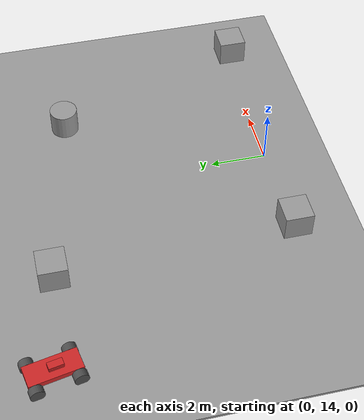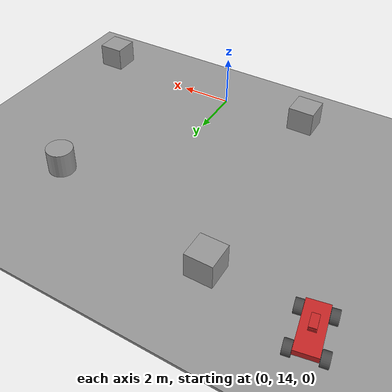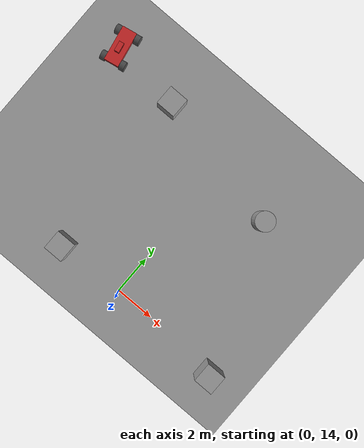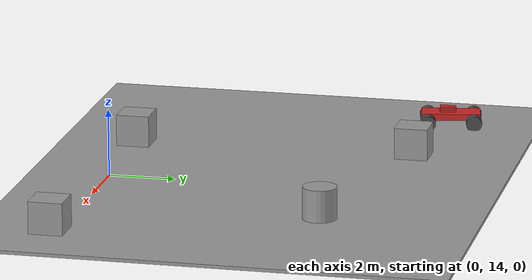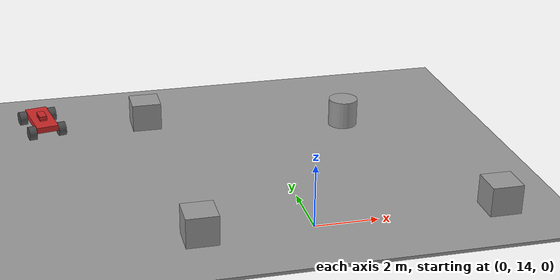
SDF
<sdf version="1.6">
 <world name="default">
  <light name="sun" type="directional">
   <pose>0 0 10 0 -0 0</pose>
   <diffuse>0.8 0.8 0.8 1</diffuse>
   <specular>0.2 0.2 0.2 1</specular>
   <attenuation>
    <range>1000</range>
    <constant>0.9</constant>
    <linear>0.01</linear>
    <quadratic>0.001</quadratic>
   </attenuation>
   <direction>-0.5 0.1 -0.9</direction>
  </light>
  <model name="ground_plane">
   <static>1</static>
   <link name="link">
    <collision name="collision">
     <geometry><plane><normal>0 0 1</normal><size>100 100</size></plane></geometry>
     <surface><friction><ode><mu>100</mu><mu2>50</mu2></ode></friction></surface>
    </collision>
    <visual name="visual">
     <cast_shadows>0</cast_shadows>
     <geometry><plane><normal>0 0 1</normal><size>100 100</size></plane></geometry>
     <material>
      <script><uri>file://media/materials/scripts/gazebo.material</uri><name>Gazebo/Grey</name></script>
     </material>
    </visual>
   </link>
  </model>
  <gravity>0 0 -9.8</gravity>
  <magnetic_field>6e-06 2.3e-05 -4.2e-05</magnetic_field>
  <atmosphere type="adiabatic"/>
  <physics name="default_physics" default="0" type="ode">
   <max_step_size>0.001</max_step_size>
   <real_time_factor>1</real_time_factor>
   <real_time_update_rate>1000</real_time_update_rate>
  </physics>
  <scene><ambient>0.4 0.4 0.4 1</ambient><background>0.7 0.7 0.7 1</background><shadows>1</shadows></scene>
  <spherical_coordinates>
   <surface_model>EARTH_WGS84</surface_model>
   <latitude_deg>0</latitude_deg>
   <longitude_deg>0</longitude_deg>
   <elevation>0</elevation>
   <heading_deg>0</heading_deg>
  </spherical_coordinates>
  <model name="newbot">
   <link name="base_link">
    <inertial>
     <pose>0.042217 0.001897 0.337167 0 -0 0</pose>
     <mass>16.523</mass>
     <inertia>
      <ixx>0.313604</ixx>
      <ixy>-0.00079999</ixy>
      <ixz>0.0164007</ixz>
      <iyy>0.392204</iyy>
      <iyz>-0.00090002</iyz>
      <izz>0.448502</izz>
     </inertia>
    </inertial>
    <collision name="base_link_fixed_joint_lump__camera_link_collision">
     <pose>-0.091106 0.005636 0.53357 0 -0 0</pose>
     <geometry><box><size>0.5 0.25 0.1</size></box></geometry>
    </collision>
    <collision name="base_link_fixed_joint_lump__laser_link_collision_1">
     <pose>-0.091106 0.005636 0.66357 0 -0 0</pose>
     <geometry><box><size>0.5 0.25 0.047</size></box></geometry>
    </collision>
    <collision name="base_link_fixed_joint_lump__chassis_link_collision_2">
     <pose>0 0 0.375 0 -0 0</pose>
     <geometry><box><size>1.8 0.755 0.2</size></box></geometry>
    </collision>
    <visual name="base_link_fixed_joint_lump__camera_link_visual">
     <pose>-0.091106 0.005636 0.49357 0 -0 0</pose>
     <geometry><box><size>0.5 0.25 0.1</size></box></geometry>
     <material>
      <script><name>Gazebo/Red</name><uri>file://media/materials/scripts/gazebo.material</uri></script>
     </material>
    </visual>
    <visual name="base_link_fixed_joint_lump__laser_link_visual_1">
     <pose>-0.091106 0.005636 0.61357 0 -0 0</pose>
     <geometry><box><size>0.5 0.25 0.047</size></box></geometry>
     <material>
      <script><name>Gazebo/Red</name><uri>file://media/materials/scripts/gazebo.material</uri></script>
     </material>
    </visual>
    <visual name="base_link_fixed_joint_lump__chassis_link_visual_2">
     <pose>0 0 0.375 0 -0 0</pose>
     <geometry><box><size>1.8 0.755 0.2</size></box></geometry>
     <material>
      <script><name>Gazebo/Red</name><uri>file://media/materials/scripts/gazebo.material</uri></script>
     </material>
    </visual>
    <sensor name="camera" type="camera">
     <update_rate>30</update_rate>
     <camera name="head">
      <horizontal_fov>1.39626</horizontal_fov>
      <image><width>800</width><height>800</height><format>R8G8B8</format></image>
      <clip><near>0.02</near><far>300</far></clip>
      <noise><mean>0</mean><stddev>0.007</stddev><type>gaussian</type></noise>
     </camera>
     <plugin name="camera_controller" filename="libgazebo_ros_camera.so">
      <alwaysOn>true</alwaysOn>
      <updateRate>0.0</updateRate>
      <cameraName>camera</cameraName>
      <imageTopicName>image_raw</imageTopicName>
      <cameraInfoTopicName>camera_info</cameraInfoTopicName>
      <frameName>camera_link</frameName>
      <hackBaseline>0.07</hackBaseline>
      <distortionK1>0.0</distortionK1>
      <distortionK2>0.0</distortionK2>
      <distortionK3>0.0</distortionK3>
      <distortionT1>0.0</distortionT1>
      <distortionT2>0.0</distortionT2>
      <robotNamespace>/</robotNamespace>
     </plugin>
     <pose>-0.091106 0.005636 0.49357 0 -0 0</pose>
    </sensor>
    <sensor name="head_hokuyo_sensor" type="ray">
     <visualize>1</visualize>
     <update_rate>40</update_rate>
     <ray>
      <scan>
       <horizontal>
        <samples>720</samples>
        <resolution>1</resolution>
        <min_angle>-3.14159</min_angle>
        <max_angle>3.14159</max_angle>
       </horizontal>
       <vertical><samples>1</samples><min_angle>0</min_angle><max_angle>0</max_angle></vertical>
      </scan>
      <range><min>0.1</min><max>30</max><resolution>0.01</resolution></range>
      <noise><type>gaussian</type><mean>0</mean><stddev>0.01</stddev></noise>
     </ray>
     <plugin name="gazebo_ros_head_hokuyo_controller" filename="libgazebo_ros_laser.so">
      <topicName>base_scan</topicName>
      <frameName>laser_link</frameName>
      <robotNamespace>/</robotNamespace>
     </plugin>
     <pose>-0.091106 0.005636 0.61357 0 -0 0</pose>
    </sensor>
   </link>
   <link name="front_left_wheel_link">
    <pose>0.70465 0.51502 0.23923 0 -0 0</pose>
    <inertial>
     <pose>9e-06 1e-06 -4e-06 0 -0 0</pose>
     <mass>0.477</mass>
     <inertia><ixx>0.0013</ixx><ixy>0</ixy><ixz>0</ixz><iyy>0.0024</iyy><iyz>0</iyz><izz>0.0013</izz></inertia>
    </inertial>
    <collision name="front_left_wheel_link_collision">
     <pose>0 0 0 1.5708 -0 0</pose>
     <geometry><cylinder><length>0.26</length><radius>0.24</radius></cylinder></geometry>
     <surface><friction><ode><mu>0.2</mu><mu2>0.2</mu2></ode></friction></surface>
    </collision>
    <visual name="front_left_wheel_link_visual">
     <pose>0 0 0 1.5708 -0 0</pose>
     <geometry><cylinder><length>0.26</length><radius>0.24</radius></cylinder></geometry>
     <material>
      <script><name>Gazebo/DarkGrey</name><uri>file://media/materials/scripts/gazebo.material</uri></script>
     </material>
    </visual>
   </link>
   <joint name="front_left_wheel" type="revolute">
    <child>front_left_wheel_link</child>
    <parent>base_link</parent>
    <axis>
     <xyz>0 1 0</xyz>
     <limit><lower>-1e+16</lower><upper>1e+16</upper></limit>
     <dynamics><spring_reference>0</spring_reference><spring_stiffness>0</spring_stiffness></dynamics>
     <use_parent_model_frame>1</use_parent_model_frame>
    </axis>
   </joint>
   <link name="front_right_wheel_link">
    <pose>0.70465 -0.51501 0.23923 0 -0 0</pose>
    <inertial>
     <pose>9e-06 1e-06 -4e-06 0 -0 0</pose>
     <mass>0.477</mass>
     <inertia><ixx>0.0013</ixx><ixy>0</ixy><ixz>0</ixz><iyy>0.0024</iyy><iyz>0</iyz><izz>0.0013</izz></inertia>
    </inertial>
    <collision name="front_right_wheel_link_collision">
     <pose>0 0 0 1.5708 -0 0</pose>
     <geometry><cylinder><length>0.26</length><radius>0.24</radius></cylinder></geometry>
     <surface><friction><ode><mu>0.2</mu><mu2>0.2</mu2></ode></friction></surface>
    </collision>
    <visual name="front_right_wheel_link_visual">
     <pose>0 0 0 1.5708 -0 0</pose>
     <geometry><cylinder><length>0.26</length><radius>0.24</radius></cylinder></geometry>
     <material>
      <script><name>Gazebo/DarkGrey</name><uri>file://media/materials/scripts/gazebo.material</uri></script>
     </material>
    </visual>
   </link>
   <joint name="front_right_wheel" type="revolute">
    <child>front_right_wheel_link</child>
    <parent>base_link</parent>
    <axis>
     <xyz>0 1 0</xyz>
     <limit><lower>-1e+16</lower><upper>1e+16</upper></limit>
     <dynamics><spring_reference>0</spring_reference><spring_stiffness>0</spring_stiffness></dynamics>
     <use_parent_model_frame>1</use_parent_model_frame>
    </axis>
   </joint>
   <link name="rear_left_wheel_link">
    <pose>-0.70542 0.51502 0.23923 0 -0 0</pose>
    <inertial>
     <pose>9e-06 1e-06 -4e-06 0 -0 0</pose>
     <mass>0.477</mass>
     <inertia><ixx>0.0013</ixx><ixy>0</ixy><ixz>0</ixz><iyy>0.0024</iyy><iyz>0</iyz><izz>0.0013</izz></inertia>
    </inertial>
    <collision name="rear_left_wheel_link_collision">
     <pose>0 0 0 1.5708 -0 0</pose>
     <geometry><cylinder><length>0.26</length><radius>0.24</radius></cylinder></geometry>
     <surface><friction><ode><mu>0.2</mu><mu2>0.2</mu2></ode></friction></surface>
    </collision>
    <visual name="rear_left_wheel_link_visual">
     <pose>0 0 0 1.5708 -0 0</pose>
     <geometry><cylinder><length>0.26</length><radius>0.24</radius></cylinder></geometry>
     <material>
      <script><name>Gazebo/DarkGrey</name><uri>file://media/materials/scripts/gazebo.material</uri></script>
     </material>
    </visual>
   </link>
   <joint name="rear_left_wheel" type="revolute">
    <child>rear_left_wheel_link</child>
    <parent>base_link</parent>
    <axis>
     <xyz>0 1 0</xyz>
     <limit><lower>-1e+16</lower><upper>1e+16</upper></limit>
     <dynamics><spring_reference>0</spring_reference><spring_stiffness>0</spring_stiffness></dynamics>
     <use_parent_model_frame>1</use_parent_model_frame>
    </axis>
   </joint>
   <link name="rear_right_wheel_link">
    <pose>-0.70542 -0.51501 0.23923 0 -0 0</pose>
    <inertial>
     <pose>9e-06 1e-06 -4e-06 0 -0 0</pose>
     <mass>0.477</mass>
     <inertia><ixx>0.0013</ixx><ixy>0</ixy><ixz>0</ixz><iyy>0.0024</iyy><iyz>0</iyz><izz>0.0013</izz></inertia>
    </inertial>
    <collision name="rear_right_wheel_link_collision">
     <pose>0 0 0 1.5708 -0 0</pose>
     <geometry><cylinder><length>0.26</length><radius>0.24</radius></cylinder></geometry>
     <surface><friction><ode><mu>0.2</mu><mu2>0.2</mu2></ode></friction></surface>
    </collision>
    <visual name="rear_right_wheel_link_visual">
     <pose>0 0 0 1.5708 -0 0</pose>
     <geometry><cylinder><length>0.26</length><radius>0.24</radius></cylinder></geometry>
     <material>
      <script><name>Gazebo/DarkGrey</name><uri>file://media/materials/scripts/gazebo.material</uri></script>
     </material>
    </visual>
   </link>
   <joint name="rear_right_wheel" type="revolute">
    <child>rear_right_wheel_link</child>
    <parent>base_link</parent>
    <axis>
     <xyz>0 1 0</xyz>
     <limit><lower>-1e+16</lower><upper>1e+16</upper></limit>
     <dynamics><spring_reference>0</spring_reference><spring_stiffness>0</spring_stiffness></dynamics>
     <use_parent_model_frame>1</use_parent_model_frame>
    </axis>
   </joint>
   <plugin name="gazebo_ros_control" filename="libgazebo_ros_control.so">
    <robotSimType>gazebo_ros_control/DefaultRobotHWSim</robotSimType>
    <robotNamespace>/</robotNamespace>
   </plugin>
   <plugin name="front_differential_drive_controller" filename="libgazebo_ros_diff_drive.so">
    <alwaysOn>true</alwaysOn>
    <updateRate>100</updateRate>
    <leftJoint>front_left_wheel</leftJoint>
    <rightJoint>front_right_wheel</rightJoint>
    <torque>5</torque>
    <wheelSeparation>1.3</wheelSeparation>
    <wheelDiameter>0.48</wheelDiameter>
    <commandTopic>newbot/cmd_vel</commandTopic>
    <odometryTopic>odom</odometryTopic>
    <odometryFrame>odom</odometryFrame>
    <robotBaseFrame>base_link</robotBaseFrame>
    <publishWheelTF>true</publishWheelTF>
    <publishWheelJointState>true</publishWheelJointState>
    <wheelAcceleration>0</wheelAcceleration>
    <wheelTorque>5</wheelTorque>
    <rosDebugLevel>na</rosDebugLevel>
    <robotNamespace>/</robotNamespace>
   </plugin>
   <static>0</static>
   <plugin name="rear_differential_drive_controller" filename="libgazebo_ros_diff_drive.so">
    <alwaysOn>true</alwaysOn>
    <updateRate>100</updateRate>
    <leftJoint>rear_left_wheel</leftJoint>
    <rightJoint>rear_right_wheel</rightJoint>
    <torque>5</torque>
    <wheelSeparation>1.3</wheelSeparation>
    <wheelDiameter>0.48</wheelDiameter>
    <commandTopic>newbot/cmd_vel</commandTopic>
    <odometryTopic>odom</odometryTopic>
    <odometryFrame>odom</odometryFrame>
    <robotBaseFrame>base_link</robotBaseFrame>
    <publishWheelTF>true</publishWheelTF>
    <publishWheelJointState>true</publishWheelJointState>
    <wheelAcceleration>0</wheelAcceleration>
    <wheelTorque>5</wheelTorque>
    <rosDebugLevel>na</rosDebugLevel>
    <robotNamespace>/</robotNamespace>
   </plugin>
   <pose>-7.45169 22.8942 0.000764 8e-06 -7e-06 1.75766</pose>
  </model>
  <model name="ground_plane_0">
   <static>1</static>
   <link name="link">
    <collision name="collision">
     <geometry><plane><normal>0 0 1</normal><size>100 100</size></plane></geometry>
     <surface><friction><ode><mu>100</mu><mu2>50</mu2></ode></friction></surface>
    </collision>
    <visual name="visual">
     <cast_shadows>0</cast_shadows>
     <geometry><plane><normal>0 0 1</normal><size>100 100</size></plane></geometry>
     <material>
      <script><uri>file://media/materials/scripts/gazebo.material</uri><name>Gazebo/Grey</name></script>
     </material>
    </visual>
   </link>
   <pose>6.4531 -0.016728 0 0 -0 0</pose>
  </model>
  <model name="unit_box">
   <pose>-3.45307 13.9501 0.499999 2e-06 -0 0</pose>
   <link name="link">
    <inertial>
     <mass>1</mass>
     <inertia>
      <ixx>0.166667</ixx>
      <ixy>0</ixy>
      <ixz>0</ixz>
      <iyy>0.166667</iyy>
      <iyz>0</iyz>
      <izz>0.166667</izz>
     </inertia>
    </inertial>
    <collision name="collision"><geometry><box><size>1 1 1</size></box></geometry></collision>
    <visual name="visual">
     <geometry><box><size>1 1 1</size></box></geometry>
     <material>
      <script><name>Gazebo/Grey</name><uri>file://media/materials/scripts/gazebo.material</uri></script>
     </material>
    </visual>
   </link>
  </model>
  <model name="unit_cylinder">
   <pose>3.0317 20.9862 0.499993 4e-06 2e-06 -0</pose>
   <link name="link">
    <inertial>
     <mass>1</mass>
     <inertia><ixx>0.145833</ixx><ixy>0</ixy><ixz>0</ixz><iyy>0.145833</iyy><iyz>0</iyz><izz>0.125</izz></inertia>
    </inertial>
    <collision name="collision">
     <geometry><cylinder><radius>0.5</radius><length>1</length></cylinder></geometry>
    </collision>
    <visual name="visual">
     <geometry><cylinder><radius>0.5</radius><length>1</length></cylinder></geometry>
     <material>
      <script><name>Gazebo/Grey</name><uri>file://media/materials/scripts/gazebo.material</uri></script>
     </material>
    </visual>
   </link>
  </model>
  <model name="unit_box_0">
   <pose>5.80309 13.7912 0.499993 0 -6e-06 0</pose>
   <link name="link">
    <inertial>
     <mass>1</mass>
     <inertia>
      <ixx>0.166667</ixx>
      <ixy>0</ixy>
      <ixz>0</ixz>
      <iyy>0.166667</iyy>
      <iyz>0</iyz>
      <izz>0.166667</izz>
     </inertia>
    </inertial>
    <collision name="collision"><geometry><box><size>1 1 1</size></box></geometry></collision>
    <visual name="visual">
     <geometry><box><size>1 1 1</size></box></geometry>
     <material>
      <script><name>Gazebo/Grey</name><uri>file://media/materials/scripts/gazebo.material</uri></script>
     </material>
    </visual>
   </link>
  </model>
  <model name="unit_box_1">
   <pose>-3.8407 22.4094 0.499999 2e-06 -0 0</pose>
   <link name="link">
    <inertial>
     <mass>1</mass>
     <inertia>
      <ixx>0.166667</ixx>
      <ixy>0</ixy>
      <ixz>0</ixz>
      <iyy>0.166667</iyy>
      <iyz>0</iyz>
      <izz>0.166667</izz>
     </inertia>
    </inertial>
    <collision name="collision"><geometry><box><size>1 1 1</size></box></geometry></collision>
    <visual name="visual">
     <geometry><box><size>1 1 1</size></box></geometry>
     <material>
      <script><name>Gazebo/Grey</name><uri>file://media/materials/scripts/gazebo.material</uri></script>
     </material>
    </visual>
   </link>
  </model>
 </world>
</sdf>
